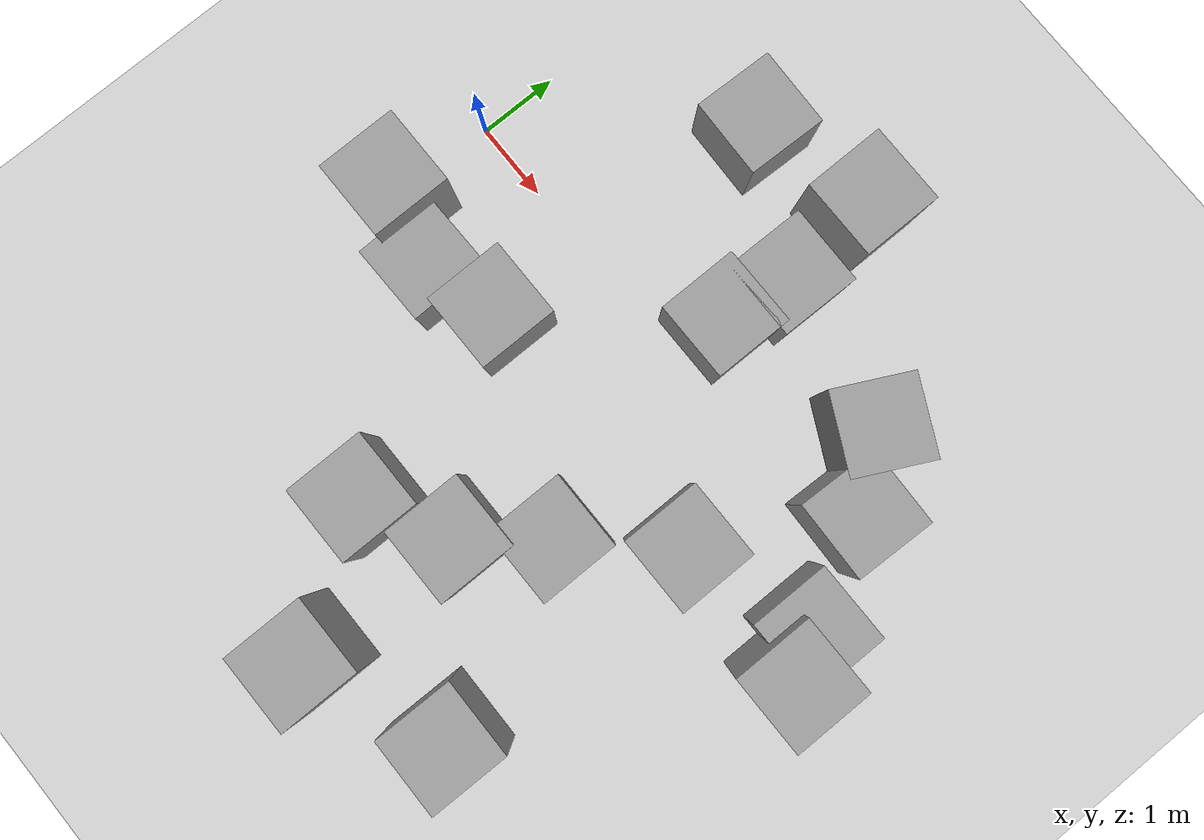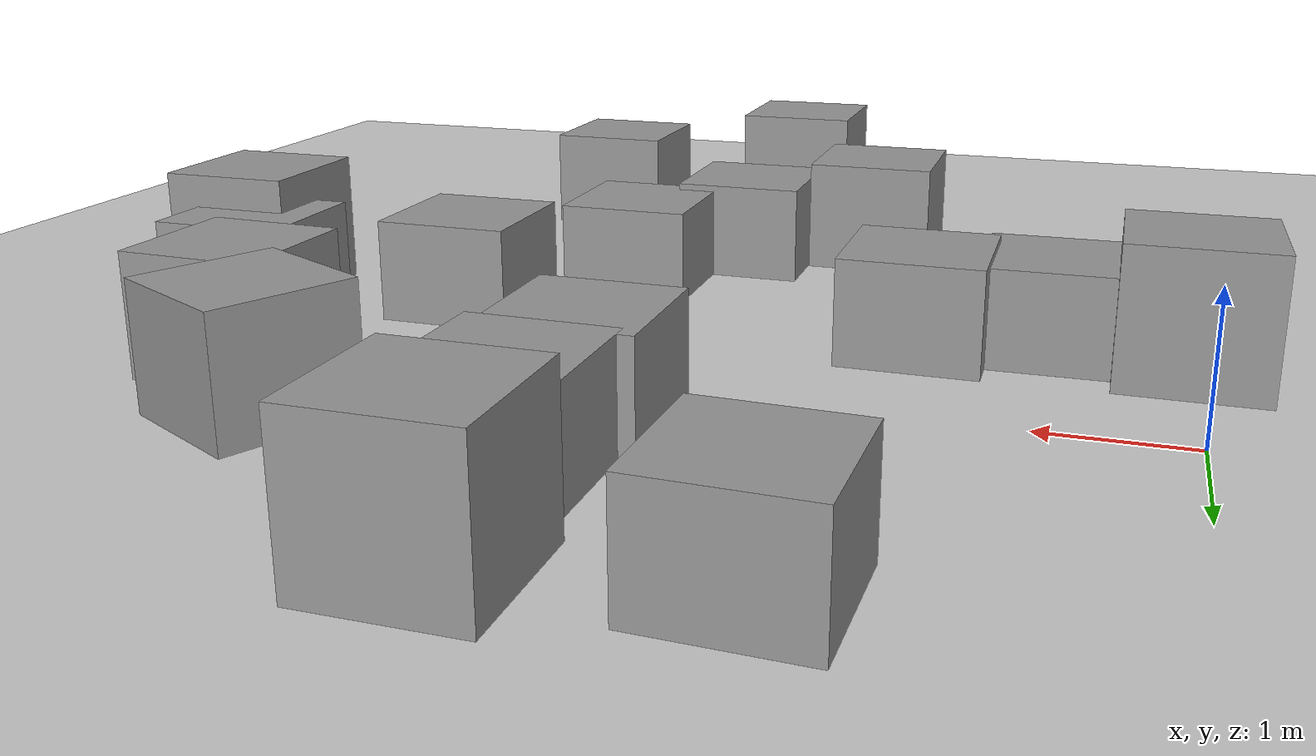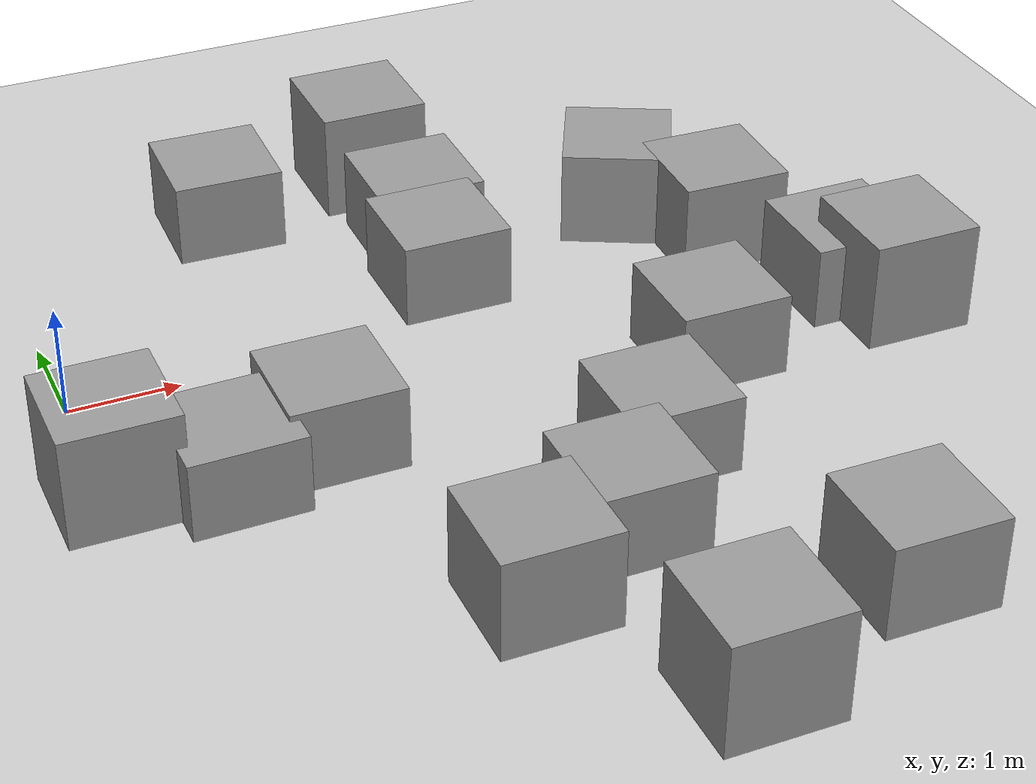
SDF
<sdf version='1.7'>
  <world name='default'>
    <light name='sun' type='directional'>
      <cast_shadows>1</cast_shadows>
      <pose>0 0 10 0 -0 0</pose>
      <diffuse>0.8 0.8 0.8 1</diffuse>
      <specular>0.2 0.2 0.2 1</specular>
      <attenuation>
        <range>1000</range>
        <constant>0.9</constant>
        <linear>0.01</linear>
        <quadratic>0.001</quadratic>
      </attenuation>
      <direction>-0.5 0.1 -0.9</direction>
      <spot>
        <inner_angle>0</inner_angle>
        <outer_angle>0</outer_angle>
        <falloff>0</falloff>
      </spot>
    </light>
    <model name='ground_plane'>
      <static>1</static>
      <link name='link'>
        <collision name='collision'>
          <geometry>
            <plane>
              <normal>0 0 1</normal>
              <size>100 100</size>
            </plane>
          </geometry>
          <surface>
            <contact>
              <collide_bitmask>65535</collide_bitmask>
              <ode/>
            </contact>
            <friction>
              <ode>
                <mu>100</mu>
                <mu2>50</mu2>
              </ode>
              <torsional>
                <ode/>
              </torsional>
            </friction>
            <bounce/>
          </surface>
          <max_contacts>10</max_contacts>
        </collision>
        <visual name='visual'>
          <cast_shadows>0</cast_shadows>
          <geometry>
            <plane>
              <normal>0 0 1</normal>
              <size>100 100</size>
            </plane>
          </geometry>
          <material>
            <script>
              <uri>file://media/materials/scripts/gazebo.material</uri>
              <name>Gazebo/Grey</name>
            </script>
          </material>
        </visual>
        <self_collide>0</self_collide>
        <enable_wind>0</enable_wind>
        <kinematic>0</kinematic>
      </link>
    </model>
    <gravity>0 0 -9.8</gravity>
    <magnetic_field>6e-06 2.3e-05 -4.2e-05</magnetic_field>
    <atmosphere type='adiabatic'/>
    <physics type='ode'>
      <max_step_size>0.001</max_step_size>
      <real_time_factor>1</real_time_factor>
      <real_time_update_rate>1000</real_time_update_rate>
    </physics>
    <scene>
      <ambient>0.4 0.4 0.4 1</ambient>
      <background>0.7 0.7 0.7 1</background>
      <shadows>1</shadows>
    </scene>
    <wind/>
    <spherical_coordinates>
      <surface_model>EARTH_WGS84</surface_model>
      <latitude_deg>0</latitude_deg>
      <longitude_deg>0</longitude_deg>
      <elevation>0</elevation>
      <heading_deg>0</heading_deg>
    </spherical_coordinates>
    <gui fullscreen='0'>
      <camera name='user_camera'>
        <pose>-2.70813 5.70495 19.0216 2e-06 1.5418 -1.5749</pose>
        <view_controller>orbit</view_controller>
        <projection_type>perspective</projection_type>
      </camera>
    </gui>
    <include>
      <uri>model://unit_box</uri>
      <name>sink</name>
      <pose>5.63250 1.15250 0.37500 0 0 1.10715</pose>
      <scale>0.02 0.56 0.75</scale>
    </include>
<include>
      <uri>model://unit_box</uri>
      <name>sofa</name>
      <pose>3.72250 1.51250 0.25000 0 0 1.56085</pose>
      <scale>2.01 0.93 0.50</scale>
    </include>
<include>
      <uri>model://unit_box</uri>
      <name>living_cabinet</name>
      <pose>2.09250 2.41250 0.25000 0 0 3.11190</pose>
      <scale>1.01 0.36 0.50</scale>
    </include>
<include>
      <uri>model://unit_box</uri>
      <name>laundry_table</name>
      <pose>0.96500 -1.57250 0.20000 0 0 -1.55427</pose>
      <scale>1.21 0.81 0.40</scale>
    </include>
<include>
      <uri>model://unit_box</uri>
      <name>dining_table</name>
      <pose>5.28500 -4.69500 0.32500 0 0 -0.00855</pose>
      <scale>1.17 1.07 0.65</scale>
    </include>
<include>
      <uri>model://unit_box</uri>
      <name>side_table</name>
      <pose>4.31250 -2.42000 0.20000 0 0 -1.57080</pose>
      <scale>1.06 0.49 0.40</scale>
    </include>
<include>
      <uri>model://unit_box</uri>
      <name>dishwasher</name>
      <pose>6.24750 0.38250 0.37500 0 0 1.53923</pose>
      <scale>0.95 0.54 0.75</scale>
    </include>
<include>
      <uri>model://unit_box</uri>
      <name>washing_machine</name>
      <pose>2.60750 -3.79000 0.37500 0 0 0.00000</pose>
      <scale>0.60 0.61 0.75</scale>
    </include>
<include>
      <uri>model://unit_box</uri>
      <name>cabinet</name>
      <pose>6.90500 -0.81000 0.25000 0 0 0.00000</pose>
      <scale>0.31 0.58 0.50</scale>
    </include>
<include>
      <uri>model://unit_box</uri>
      <name>wall_0</name>
      <pose>3.60996 2.69257 0.50000 0 0 0</pose>
      <scale>6.90 0.20 1.00</scale>
    </include>
<include>
      <uri>model://unit_box</uri>
      <name>wall_1</name>
      <pose>7.16000 -1.31890 0.50000 0 0 0</pose>
      <scale>0.20 7.82 1.00</scale>
    </include>
<include>
      <uri>model://unit_box</uri>
      <name>wall_2</name>
      <pose>3.60996 -5.33037 0.50000 0 0 0</pose>
      <scale>6.90 0.20 1.00</scale>
    </include>
<include>
      <uri>model://unit_box</uri>
      <name>wall_3</name>
      <pose>0.05992 -1.31890 0.50000 0 0 0</pose>
      <scale>0.20 7.82 1.00</scale>
    </include>
<include>
      <uri>model://unit_box</uri>
      <name>room_wall_0</name>
      <pose>5.33498 -1.31890 0.25000 0 0 0</pose>
      <scale>1.73 0.20 0.50</scale>
    </include>
<include>
      <uri>model://unit_box</uri>
      <name>room_wall_1</name>
      <pose>3.60996 0.63683 0.25000 0 0 0</pose>
      <scale>0.20 1.96 0.50</scale>
    </include>
<include>
      <uri>model://unit_box</uri>
      <name>room_wall_2</name>
      <pose>1.88494 -1.31890 0.25000 0 0 0</pose>
      <scale>1.73 0.20 0.50</scale>
    </include>
<include>
      <uri>model://unit_box</uri>
      <name>room_wall_3</name>
      <pose>3.60996 -3.27464 0.25000 0 0 0</pose>
      <scale>0.20 1.96 0.50</scale>
    </include>
  </world>
</sdf>

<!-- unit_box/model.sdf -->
<sdf version='1.7'>
  <model name='unit_box'>
    <link name='link'>
      <inertial>
        <mass>1</mass>
        <inertia>
          <ixx>0.166667</ixx>
          <ixy>0</ixy>
          <ixz>0</ixz>
          <iyy>0.166667</iyy>
          <iyz>0</iyz>
          <izz>0.166667</izz>
        </inertia>
        <pose>0 0 0 0 -0 0</pose>
      </inertial>
      <self_collide>0</self_collide>
      <enable_wind>0</enable_wind>
      <pose>0 0 0 0 -0 0</pose>
      <gravity>1</gravity>
      <kinematic>0</kinematic>
      <visual name='visual'>
        <geometry>
          <box>
            <size>1 1 1</size>
          </box>
        </geometry>
        <material>
          <script>
            <name>Gazebo/Grey</name>
            <uri>file://media/materials/scripts/gazebo.material</uri>
          </script>
          <shader type='pixel'>
            <normal_map>__default__</normal_map>
          </shader>
          <ambient>0.8 0.8 0.8 1</ambient>
          <diffuse>0.7 0.7 0.7 1</diffuse>
          <specular>0.01 0.01 0.01 1</specular>
          <emissive>0 0 0 1</emissive>
        </material>
        <pose>0 0 0 0 -0 0</pose>
        <transparency>0</transparency>
        <cast_shadows>1</cast_shadows>
      </visual>
      <collision name='collision'>
        <laser_retro>0</laser_retro>
        <max_contacts>10</max_contacts>
        <pose>0 0 0 0 -0 0</pose>
        <geometry>
          <box>
            <size>1 1 1</size>
          </box>
        </geometry>
        <surface>
          <friction>
            <ode>
              <mu>1</mu>
              <mu2>1</mu2>
              <fdir1>0 0 0</fdir1>
              <slip1>0</slip1>
              <slip2>0</slip2>
            </ode>
            <torsional>
              <coefficient>1</coefficient>
              <patch_radius>0</patch_radius>
              <surface_radius>0</surface_radius>
              <use_patch_radius>1</use_patch_radius>
              <ode>
                <slip>0</slip>
              </ode>
            </torsional>
          </friction>
          <bounce>
            <restitution_coefficient>0</restitution_coefficient>
            <threshold>1e+06</threshold>
          </bounce>
          <contact>
            <collide_without_contact>0</collide_without_contact>
            <collide_without_contact_bitmask>1</collide_without_contact_bitmask>
            <collide_bitmask>1</collide_bitmask>
            <ode>
              <soft_cfm>0</soft_cfm>
              <soft_erp>0.2</soft_erp>
              <kp>1e+13</kp>
              <kd>1</kd>
              <max_vel>0.01</max_vel>
              <min_depth>0</min_depth>
            </ode>
            <bullet>
              <split_impulse>1</split_impulse>
              <split_impulse_penetration_threshold>-0.01</split_impulse_penetration_threshold>
              <soft_cfm>0</soft_cfm>
              <soft_erp>0.2</soft_erp>
              <kp>1e+13</kp>
              <kd>1</kd>
            </bullet>
          </contact>
        </surface>
      </collision>
    </link>
    <static>0</static>
    <allow_auto_disable>1</allow_auto_disable>
  </model>
</sdf>
